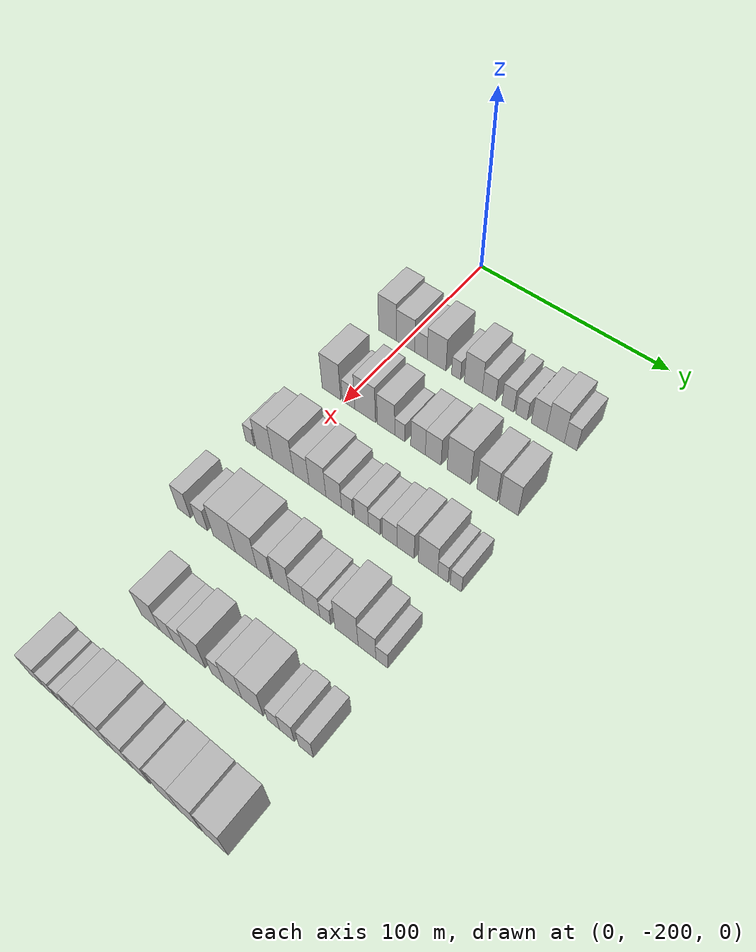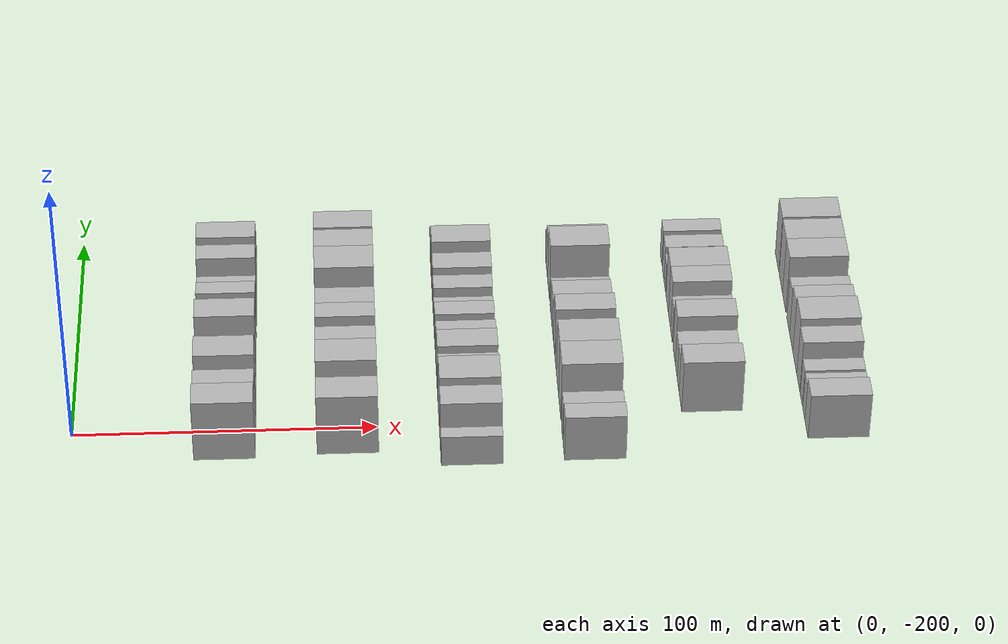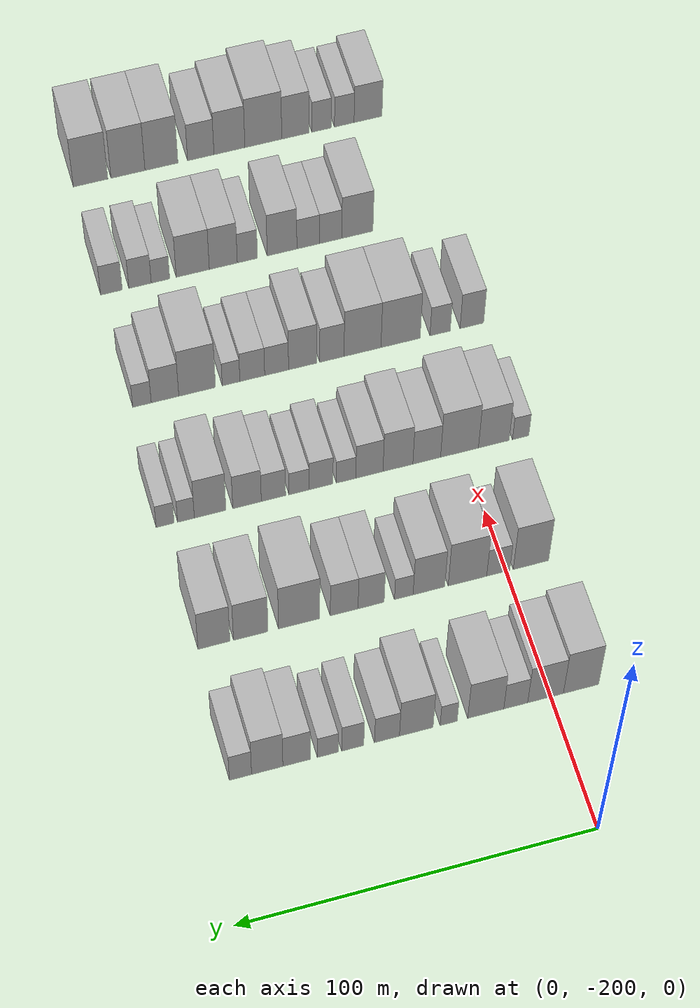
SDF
<sdf version="1.6">
 <world name="default">
  <model name="building_47">
   <static>1</static>
   <pose>50.0000 -208.5934 0 0.000000 0.000000 0.000000</pose>
   <link name="link">
    <pose>0 0 12.00 0 0 0</pose>
    <collision name="collision"><geometry><box><size>20.0000 10.1195 24.0000</size></box></geometry></collision>
    <visual name="visual">
     <cast_shadows>0</cast_shadows>
     <geometry><box><size>20.0000 10.1195 24.0000</size></box></geometry>
     <material>
      <script>
       <uri>model://HANNAS_wall/materials/scripts</uri>
       <uri>model://HANNAS_wall/materials/textures</uri>
       <name>vrc/HANNAS_wall</name>
      </script>
     </material>
    </visual>
   </link>
  </model>
  <model name="building_48">
   <static>1</static>
   <pose>50.0000 -198.4298 0 0.000000 0.000000 0.000000</pose>
   <link name="link">
    <pose>0 0 10.50 0 0 0</pose>
    <collision name="collision"><geometry><box><size>20.0000 10.2078 21.0000</size></box></geometry></collision>
    <visual name="visual">
     <cast_shadows>0</cast_shadows>
     <geometry><box><size>20.0000 10.2078 21.0000</size></box></geometry>
     <material>
      <script>
       <uri>model://HANNAS_wall/materials/scripts</uri>
       <uri>model://HANNAS_wall/materials/textures</uri>
       <name>vrc/HANNAS_wall</name>
      </script>
     </material>
    </visual>
   </link>
  </model>
  <model name="building_49">
   <static>1</static>
   <pose>50.0000 -189.9141 0 0.000000 0.000000 0.000000</pose>
   <link name="link">
    <pose>0 0 7.50 0 0 0</pose>
    <collision name="collision"><geometry><box><size>20.0000 6.8235 15.0000</size></box></geometry></collision>
    <visual name="visual">
     <cast_shadows>0</cast_shadows>
     <geometry><box><size>20.0000 6.8235 15.0000</size></box></geometry>
     <material>
      <script>
       <uri>model://HANNAS_wall/materials/scripts</uri>
       <uri>model://HANNAS_wall/materials/textures</uri>
       <name>vrc/HANNAS_wall</name>
      </script>
     </material>
    </visual>
   </link>
  </model>
  <model name="building_50">
   <static>1</static>
   <pose>50.0000 -181.3824 0 0.000000 0.000000 0.000000</pose>
   <link name="link">
    <pose>0 0 10.50 0 0 0</pose>
    <collision name="collision"><geometry><box><size>20.0000 10.2401 21.0000</size></box></geometry></collision>
    <visual name="visual">
     <cast_shadows>0</cast_shadows>
     <geometry><box><size>20.0000 10.2401 21.0000</size></box></geometry>
     <material>
      <script>
       <uri>model://HANNAS_wall/materials/scripts</uri>
       <uri>model://HANNAS_wall/materials/textures</uri>
       <name>vrc/HANNAS_wall</name>
      </script>
     </material>
    </visual>
   </link>
  </model>
  <model name="building_51">
   <static>1</static>
   <pose>50.0000 -170.8531 0 0.000000 0.000000 0.000000</pose>
   <link name="link">
    <pose>0 0 6.00 0 0 0</pose>
    <collision name="collision"><geometry><box><size>20.0000 4.8184 12.0000</size></box></geometry></collision>
    <visual name="visual">
     <cast_shadows>0</cast_shadows>
     <geometry><box><size>20.0000 4.8184 12.0000</size></box></geometry>
     <material>
      <script>
       <uri>model://HANNAS_wall/materials/scripts</uri>
       <uri>model://HANNAS_wall/materials/textures</uri>
       <name>vrc/HANNAS_wall</name>
      </script>
     </material>
    </visual>
   </link>
  </model>
  <model name="building_52">
   <static>1</static>
   <pose>50.0000 -161.6943 0 0.000000 0.000000 0.000000</pose>
   <link name="link">
    <pose>0 0 10.50 0 0 0</pose>
    <collision name="collision"><geometry><box><size>20.0000 9.4994 21.0000</size></box></geometry></collision>
    <visual name="visual">
     <cast_shadows>0</cast_shadows>
     <geometry><box><size>20.0000 9.4994 21.0000</size></box></geometry>
     <material>
      <script>
       <uri>model://HANNAS_wall/materials/scripts</uri>
       <uri>model://HANNAS_wall/materials/textures</uri>
       <name>vrc/HANNAS_wall</name>
      </script>
     </material>
    </visual>
   </link>
  </model>
  <model name="building_53">
   <static>1</static>
   <pose>50.0000 -153.4275 0 0.000000 0.000000 0.000000</pose>
   <link name="link">
    <pose>0 0 7.50 0 0 0</pose>
    <collision name="collision"><geometry><box><size>20.0000 7.0341 15.0000</size></box></geometry></collision>
    <visual name="visual">
     <cast_shadows>0</cast_shadows>
     <geometry><box><size>20.0000 7.0341 15.0000</size></box></geometry>
     <material>
      <script>
       <uri>model://HANNAS_wall/materials/scripts</uri>
       <uri>model://HANNAS_wall/materials/textures</uri>
       <name>vrc/HANNAS_wall</name>
      </script>
     </material>
    </visual>
   </link>
  </model>
  <model name="building_54">
   <static>1</static>
   <pose>50.0000 -143.8111 0 0.000000 0.000000 0.000000</pose>
   <link name="link">
    <pose>0 0 7.50 0 0 0</pose>
    <collision name="collision"><geometry><box><size>20.0000 6.1988 15.0000</size></box></geometry></collision>
    <visual name="visual">
     <cast_shadows>0</cast_shadows>
     <geometry><box><size>20.0000 6.1988 15.0000</size></box></geometry>
     <material>
      <script>
       <uri>model://HANNAS_wall/materials/scripts</uri>
       <uri>model://HANNAS_wall/materials/textures</uri>
       <name>vrc/HANNAS_wall</name>
      </script>
     </material>
    </visual>
   </link>
  </model>
  <model name="building_55">
   <static>1</static>
   <pose>50.0000 -136.8092 0 0.000000 0.000000 0.000000</pose>
   <link name="link">
    <pose>0 0 6.00 0 0 0</pose>
    <collision name="collision"><geometry><box><size>20.0000 5.8050 12.0000</size></box></geometry></collision>
    <visual name="visual">
     <cast_shadows>0</cast_shadows>
     <geometry><box><size>20.0000 5.8050 12.0000</size></box></geometry>
     <material>
      <script>
       <uri>model://HANNAS_wall/materials/scripts</uri>
       <uri>model://HANNAS_wall/materials/textures</uri>
       <name>vrc/HANNAS_wall</name>
      </script>
     </material>
    </visual>
   </link>
  </model>
  <model name="building_56">
   <static>1</static>
   <pose>50.0000 -128.0963 0 0.000000 0.000000 0.000000</pose>
   <link name="link">
    <pose>0 0 9.00 0 0 0</pose>
    <collision name="collision"><geometry><box><size>20.0000 7.6208 18.0000</size></box></geometry></collision>
    <visual name="visual">
     <cast_shadows>0</cast_shadows>
     <geometry><box><size>20.0000 7.6208 18.0000</size></box></geometry>
     <material>
      <script>
       <uri>model://HANNAS_wall/materials/scripts</uri>
       <uri>model://HANNAS_wall/materials/textures</uri>
       <name>vrc/HANNAS_wall</name>
      </script>
     </material>
    </visual>
   </link>
  </model>
  <model name="building_57">
   <static>1</static>
   <pose>50.0000 -119.9312 0 0.000000 0.000000 0.000000</pose>
   <link name="link">
    <pose>0 0 10.50 0 0 0</pose>
    <collision name="collision"><geometry><box><size>20.0000 8.7093 21.0000</size></box></geometry></collision>
    <visual name="visual">
     <cast_shadows>0</cast_shadows>
     <geometry><box><size>20.0000 8.7093 21.0000</size></box></geometry>
     <material>
      <script>
       <uri>model://HANNAS_wall/materials/scripts</uri>
       <uri>model://HANNAS_wall/materials/textures</uri>
       <name>vrc/HANNAS_wall</name>
      </script>
     </material>
    </visual>
   </link>
  </model>
  <model name="building_58">
   <static>1</static>
   <pose>50.0000 -112.5008 0 0.000000 0.000000 0.000000</pose>
   <link name="link">
    <pose>0 0 7.50 0 0 0</pose>
    <collision name="collision"><geometry><box><size>20.0000 6.1514 15.0000</size></box></geometry></collision>
    <visual name="visual">
     <cast_shadows>0</cast_shadows>
     <geometry><box><size>20.0000 6.1514 15.0000</size></box></geometry>
     <material>
      <script>
       <uri>model://HANNAS_wall/materials/scripts</uri>
       <uri>model://HANNAS_wall/materials/textures</uri>
       <name>vrc/HANNAS_wall</name>
      </script>
     </material>
    </visual>
   </link>
  </model>
  <model name="building_187">
   <static>1</static>
   <pose>90.0000 -207.2074 0 0.000000 0.000000 0.000000</pose>
   <link name="link">
    <pose>0 0 12.00 0 0 0</pose>
    <collision name="collision"><geometry><box><size>20.0000 10.3668 24.0000</size></box></geometry></collision>
    <visual name="visual">
     <cast_shadows>0</cast_shadows>
     <geometry><box><size>20.0000 10.3668 24.0000</size></box></geometry>
     <material>
      <script>
       <uri>model://HANNAS_wall/materials/scripts</uri>
       <uri>model://HANNAS_wall/materials/textures</uri>
       <name>vrc/HANNAS_wall</name>
      </script>
     </material>
    </visual>
   </link>
  </model>
  <model name="building_188">
   <static>1</static>
   <pose>90.0000 -197.6466 0 0.000000 0.000000 0.000000</pose>
   <link name="link">
    <pose>0 0 7.50 0 0 0</pose>
    <collision name="collision"><geometry><box><size>20.0000 6.7547 15.0000</size></box></geometry></collision>
    <visual name="visual">
     <cast_shadows>0</cast_shadows>
     <geometry><box><size>20.0000 6.7547 15.0000</size></box></geometry>
     <material>
      <script>
       <uri>model://HANNAS_wall/materials/scripts</uri>
       <uri>model://HANNAS_wall/materials/textures</uri>
       <name>vrc/HANNAS_wall</name>
      </script>
     </material>
    </visual>
   </link>
  </model>
  <model name="building_189">
   <static>1</static>
   <pose>90.0000 -188.6585 0 0.000000 0.000000 0.000000</pose>
   <link name="link">
    <pose>0 0 12.00 0 0 0</pose>
    <collision name="collision"><geometry><box><size>20.0000 11.2215 24.0000</size></box></geometry></collision>
    <visual name="visual">
     <cast_shadows>0</cast_shadows>
     <geometry><box><size>20.0000 11.2215 24.0000</size></box></geometry>
     <material>
      <script>
       <uri>model://HANNAS_wall/materials/scripts</uri>
       <uri>model://HANNAS_wall/materials/textures</uri>
       <name>vrc/HANNAS_wall</name>
      </script>
     </material>
    </visual>
   </link>
  </model>
  <model name="building_190">
   <static>1</static>
   <pose>90.0000 -177.4496 0 0.000000 0.000000 0.000000</pose>
   <link name="link">
    <pose>0 0 10.50 0 0 0</pose>
    <collision name="collision"><geometry><box><size>20.0000 9.1963 21.0000</size></box></geometry></collision>
    <visual name="visual">
     <cast_shadows>0</cast_shadows>
     <geometry><box><size>20.0000 9.1963 21.0000</size></box></geometry>
     <material>
      <script>
       <uri>model://HANNAS_wall/materials/scripts</uri>
       <uri>model://HANNAS_wall/materials/textures</uri>
       <name>vrc/HANNAS_wall</name>
      </script>
     </material>
    </visual>
   </link>
  </model>
  <model name="building_191">
   <static>1</static>
   <pose>90.0000 -170.1637 0 0.000000 0.000000 0.000000</pose>
   <link name="link">
    <pose>0 0 6.00 0 0 0</pose>
    <collision name="collision"><geometry><box><size>20.0000 5.3755 12.0000</size></box></geometry></collision>
    <visual name="visual">
     <cast_shadows>0</cast_shadows>
     <geometry><box><size>20.0000 5.3755 12.0000</size></box></geometry>
     <material>
      <script>
       <uri>model://HANNAS_wall/materials/scripts</uri>
       <uri>model://HANNAS_wall/materials/textures</uri>
       <name>vrc/HANNAS_wall</name>
      </script>
     </material>
    </visual>
   </link>
  </model>
  <model name="building_192">
   <static>1</static>
   <pose>90.0000 -160.7091 0 0.000000 0.000000 0.000000</pose>
   <link name="link">
    <pose>0 0 9.00 0 0 0</pose>
    <collision name="collision"><geometry><box><size>20.0000 7.5336 18.0000</size></box></geometry></collision>
    <visual name="visual">
     <cast_shadows>0</cast_shadows>
     <geometry><box><size>20.0000 7.5336 18.0000</size></box></geometry>
     <material>
      <script>
       <uri>model://HANNAS_wall/materials/scripts</uri>
       <uri>model://HANNAS_wall/materials/textures</uri>
       <name>vrc/HANNAS_wall</name>
      </script>
     </material>
    </visual>
   </link>
  </model>
  <model name="building_193">
   <static>1</static>
   <pose>90.0000 -152.9391 0 0.000000 0.000000 0.000000</pose>
   <link name="link">
    <pose>0 0 9.00 0 0 0</pose>
    <collision name="collision"><geometry><box><size>20.0000 8.0065 18.0000</size></box></geometry></collision>
    <visual name="visual">
     <cast_shadows>0</cast_shadows>
     <geometry><box><size>20.0000 8.0065 18.0000</size></box></geometry>
     <material>
      <script>
       <uri>model://HANNAS_wall/materials/scripts</uri>
       <uri>model://HANNAS_wall/materials/textures</uri>
       <name>vrc/HANNAS_wall</name>
      </script>
     </material>
    </visual>
   </link>
  </model>
  <model name="building_194">
   <static>1</static>
   <pose>90.0000 -140.0308 0 0.000000 0.000000 0.000000</pose>
   <link name="link">
    <pose>0 0 12.00 0 0 0</pose>
    <collision name="collision"><geometry><box><size>20.0000 11.8102 24.0000</size></box></geometry></collision>
    <visual name="visual">
     <cast_shadows>0</cast_shadows>
     <geometry><box><size>20.0000 11.8102 24.0000</size></box></geometry>
     <material>
      <script>
       <uri>model://HANNAS_wall/materials/scripts</uri>
       <uri>model://HANNAS_wall/materials/textures</uri>
       <name>vrc/HANNAS_wall</name>
      </script>
     </material>
    </visual>
   </link>
  </model>
  <model name="building_195">
   <static>1</static>
   <pose>90.0000 -126.2016 0 0.000000 0.000000 0.000000</pose>
   <link name="link">
    <pose>0 0 10.50 0 0 0</pose>
    <collision name="collision"><geometry><box><size>20.0000 9.8482 21.0000</size></box></geometry></collision>
    <visual name="visual">
     <cast_shadows>0</cast_shadows>
     <geometry><box><size>20.0000 9.8482 21.0000</size></box></geometry>
     <material>
      <script>
       <uri>model://HANNAS_wall/materials/scripts</uri>
       <uri>model://HANNAS_wall/materials/textures</uri>
       <name>vrc/HANNAS_wall</name>
      </script>
     </material>
    </visual>
   </link>
  </model>
  <model name="building_196">
   <static>1</static>
   <pose>90.0000 -115.7255 0 0.000000 0.000000 0.000000</pose>
   <link name="link">
    <pose>0 0 10.50 0 0 0</pose>
    <collision name="collision"><geometry><box><size>20.0000 9.1041 21.0000</size></box></geometry></collision>
    <visual name="visual">
     <cast_shadows>0</cast_shadows>
     <geometry><box><size>20.0000 9.1041 21.0000</size></box></geometry>
     <material>
      <script>
       <uri>model://HANNAS_wall/materials/scripts</uri>
       <uri>model://HANNAS_wall/materials/textures</uri>
       <name>vrc/HANNAS_wall</name>
      </script>
     </material>
    </visual>
   </link>
  </model>
  <model name="building_326">
   <static>1</static>
   <pose>130.0000 -217.0787 0 0.000000 0.000000 0.000000</pose>
   <link name="link">
    <pose>0 0 6.00 0 0 0</pose>
    <collision name="collision"><geometry><box><size>20.0000 4.9067 12.0000</size></box></geometry></collision>
    <visual name="visual">
     <cast_shadows>0</cast_shadows>
     <geometry><box><size>20.0000 4.9067 12.0000</size></box></geometry>
     <material>
      <script>
       <uri>model://HANNAS_wall/materials/scripts</uri>
       <uri>model://HANNAS_wall/materials/textures</uri>
       <name>vrc/HANNAS_wall</name>
      </script>
     </material>
    </visual>
   </link>
  </model>
  <model name="building_327">
   <static>1</static>
   <pose>130.0000 -209.0170 0 0.000000 0.000000 0.000000</pose>
   <link name="link">
    <pose>0 0 10.50 0 0 0</pose>
    <collision name="collision"><geometry><box><size>20.0000 9.2166 21.0000</size></box></geometry></collision>
    <visual name="visual">
     <cast_shadows>0</cast_shadows>
     <geometry><box><size>20.0000 9.2166 21.0000</size></box></geometry>
     <material>
      <script>
       <uri>model://HANNAS_wall/materials/scripts</uri>
       <uri>model://HANNAS_wall/materials/textures</uri>
       <name>vrc/HANNAS_wall</name>
      </script>
     </material>
    </visual>
   </link>
  </model>
  <model name="building_328">
   <static>1</static>
   <pose>130.0000 -198.7559 0 0.000000 0.000000 0.000000</pose>
   <link name="link">
    <pose>0 0 12.00 0 0 0</pose>
    <collision name="collision"><geometry><box><size>20.0000 11.3056 24.0000</size></box></geometry></collision>
    <visual name="visual">
     <cast_shadows>0</cast_shadows>
     <geometry><box><size>20.0000 11.3056 24.0000</size></box></geometry>
     <material>
      <script>
       <uri>model://HANNAS_wall/materials/scripts</uri>
       <uri>model://HANNAS_wall/materials/textures</uri>
       <name>vrc/HANNAS_wall</name>
      </script>
     </material>
    </visual>
   </link>
  </model>
  <model name="building_329">
   <static>1</static>
   <pose>130.0000 -188.9693 0 0.000000 0.000000 0.000000</pose>
   <link name="link">
    <pose>0 0 9.00 0 0 0</pose>
    <collision name="collision"><geometry><box><size>20.0000 8.2676 18.0000</size></box></geometry></collision>
    <visual name="visual">
     <cast_shadows>0</cast_shadows>
     <geometry><box><size>20.0000 8.2676 18.0000</size></box></geometry>
     <material>
      <script>
       <uri>model://HANNAS_wall/materials/scripts</uri>
       <uri>model://HANNAS_wall/materials/textures</uri>
       <name>vrc/HANNAS_wall</name>
      </script>
     </material>
    </visual>
   </link>
  </model>
  <model name="building_330">
   <static>1</static>
   <pose>130.0000 -180.4011 0 0.000000 0.000000 0.000000</pose>
   <link name="link">
    <pose>0 0 10.50 0 0 0</pose>
    <collision name="collision"><geometry><box><size>20.0000 8.8687 21.0000</size></box></geometry></collision>
    <visual name="visual">
     <cast_shadows>0</cast_shadows>
     <geometry><box><size>20.0000 8.8687 21.0000</size></box></geometry>
     <material>
      <script>
       <uri>model://HANNAS_wall/materials/scripts</uri>
       <uri>model://HANNAS_wall/materials/textures</uri>
       <name>vrc/HANNAS_wall</name>
      </script>
     </material>
    </visual>
   </link>
  </model>
  <model name="building_331">
   <static>1</static>
   <pose>130.0000 -171.9346 0 0.000000 0.000000 0.000000</pose>
   <link name="link">
    <pose>0 0 9.00 0 0 0</pose>
    <collision name="collision"><geometry><box><size>20.0000 8.0644 18.0000</size></box></geometry></collision>
    <visual name="visual">
     <cast_shadows>0</cast_shadows>
     <geometry><box><size>20.0000 8.0644 18.0000</size></box></geometry>
     <material>
      <script>
       <uri>model://HANNAS_wall/materials/scripts</uri>
       <uri>model://HANNAS_wall/materials/textures</uri>
       <name>vrc/HANNAS_wall</name>
      </script>
     </material>
    </visual>
   </link>
  </model>
  <model name="building_332">
   <static>1</static>
   <pose>130.0000 -165.0359 0 0.000000 0.000000 0.000000</pose>
   <link name="link">
    <pose>0 0 6.00 0 0 0</pose>
    <collision name="collision"><geometry><box><size>20.0000 5.7330 12.0000</size></box></geometry></collision>
    <visual name="visual">
     <cast_shadows>0</cast_shadows>
     <geometry><box><size>20.0000 5.7330 12.0000</size></box></geometry>
     <material>
      <script>
       <uri>model://HANNAS_wall/materials/scripts</uri>
       <uri>model://HANNAS_wall/materials/textures</uri>
       <name>vrc/HANNAS_wall</name>
      </script>
     </material>
    </visual>
   </link>
  </model>
  <model name="building_333">
   <static>1</static>
   <pose>130.0000 -157.6831 0 0.000000 0.000000 0.000000</pose>
   <link name="link">
    <pose>0 0 7.50 0 0 0</pose>
    <collision name="collision"><geometry><box><size>20.0000 6.9726 15.0000</size></box></geometry></collision>
    <visual name="visual">
     <cast_shadows>0</cast_shadows>
     <geometry><box><size>20.0000 6.9726 15.0000</size></box></geometry>
     <material>
      <script>
       <uri>model://HANNAS_wall/materials/scripts</uri>
       <uri>model://HANNAS_wall/materials/textures</uri>
       <name>vrc/HANNAS_wall</name>
      </script>
     </material>
    </visual>
   </link>
  </model>
  <model name="building_334">
   <static>1</static>
   <pose>130.0000 -151.2222 0 0.000000 0.000000 0.000000</pose>
   <link name="link">
    <pose>0 0 6.00 0 0 0</pose>
    <collision name="collision"><geometry><box><size>20.0000 5.9492 12.0000</size></box></geometry></collision>
    <visual name="visual">
     <cast_shadows>0</cast_shadows>
     <geometry><box><size>20.0000 5.9492 12.0000</size></box></geometry>
     <material>
      <script>
       <uri>model://HANNAS_wall/materials/scripts</uri>
       <uri>model://HANNAS_wall/materials/textures</uri>
       <name>vrc/HANNAS_wall</name>
      </script>
     </material>
    </visual>
   </link>
  </model>
  <model name="building_335">
   <static>1</static>
   <pose>130.0000 -143.6815 0 0.000000 0.000000 0.000000</pose>
   <link name="link">
    <pose>0 0 7.50 0 0 0</pose>
    <collision name="collision"><geometry><box><size>20.0000 7.1323 15.0000</size></box></geometry></collision>
    <visual name="visual">
     <cast_shadows>0</cast_shadows>
     <geometry><box><size>20.0000 7.1323 15.0000</size></box></geometry>
     <material>
      <script>
       <uri>model://HANNAS_wall/materials/scripts</uri>
       <uri>model://HANNAS_wall/materials/textures</uri>
       <name>vrc/HANNAS_wall</name>
      </script>
     </material>
    </visual>
   </link>
  </model>
  <model name="building_336">
   <static>1</static>
   <pose>130.0000 -135.9465 0 0.000000 0.000000 0.000000</pose>
   <link name="link">
    <pose>0 0 9.00 0 0 0</pose>
    <collision name="collision"><geometry><box><size>20.0000 8.3377 18.0000</size></box></geometry></collision>
    <visual name="visual">
     <cast_shadows>0</cast_shadows>
     <geometry><box><size>20.0000 8.3377 18.0000</size></box></geometry>
     <material>
      <script>
       <uri>model://HANNAS_wall/materials/scripts</uri>
       <uri>model://HANNAS_wall/materials/textures</uri>
       <name>vrc/HANNAS_wall</name>
      </script>
     </material>
    </visual>
   </link>
  </model>
  <model name="building_337">
   <static>1</static>
   <pose>130.0000 -125.1754 0 0.000000 0.000000 0.000000</pose>
   <link name="link">
    <pose>0 0 10.50 0 0 0</pose>
    <collision name="collision"><geometry><box><size>20.0000 9.2045 21.0000</size></box></geometry></collision>
    <visual name="visual">
     <cast_shadows>0</cast_shadows>
     <geometry><box><size>20.0000 9.2045 21.0000</size></box></geometry>
     <material>
      <script>
       <uri>model://HANNAS_wall/materials/scripts</uri>
       <uri>model://HANNAS_wall/materials/textures</uri>
       <name>vrc/HANNAS_wall</name>
      </script>
     </material>
    </visual>
   </link>
  </model>
  <model name="building_338">
   <static>1</static>
   <pose>130.0000 -118.1358 0 0.000000 0.000000 0.000000</pose>
   <link name="link">
    <pose>0 0 6.00 0 0 0</pose>
    <collision name="collision"><geometry><box><size>20.0000 4.8747 12.0000</size></box></geometry></collision>
    <visual name="visual">
     <cast_shadows>0</cast_shadows>
     <geometry><box><size>20.0000 4.8747 12.0000</size></box></geometry>
     <material>
      <script>
       <uri>model://HANNAS_wall/materials/scripts</uri>
       <uri>model://HANNAS_wall/materials/textures</uri>
       <name>vrc/HANNAS_wall</name>
      </script>
     </material>
    </visual>
   </link>
  </model>
  <model name="building_339">
   <static>1</static>
   <pose>130.0000 -112.0849 0 0.000000 0.000000 0.000000</pose>
   <link name="link">
    <pose>0 0 6.00 0 0 0</pose>
    <collision name="collision"><geometry><box><size>20.0000 5.2271 12.0000</size></box></geometry></collision>
    <visual name="visual">
     <cast_shadows>0</cast_shadows>
     <geometry><box><size>20.0000 5.2271 12.0000</size></box></geometry>
     <material>
      <script>
       <uri>model://HANNAS_wall/materials/scripts</uri>
       <uri>model://HANNAS_wall/materials/textures</uri>
       <name>vrc/HANNAS_wall</name>
      </script>
     </material>
    </visual>
   </link>
  </model>
  <model name="building_452">
   <static>1</static>
   <pose>170.0000 -214.9379 0 0.000000 0.000000 0.000000</pose>
   <link name="link">
    <pose>0 0 9.00 0 0 0</pose>
    <collision name="collision"><geometry><box><size>20.0000 7.2183 18.0000</size></box></geometry></collision>
    <visual name="visual">
     <cast_shadows>0</cast_shadows>
     <geometry><box><size>20.0000 7.2183 18.0000</size></box></geometry>
     <material>
      <script>
       <uri>model://HANNAS_wall/materials/scripts</uri>
       <uri>model://HANNAS_wall/materials/textures</uri>
       <name>vrc/HANNAS_wall</name>
      </script>
     </material>
    </visual>
   </link>
  </model>
  <model name="building_453">
   <static>1</static>
   <pose>170.0000 -205.2210 0 0.000000 0.000000 0.000000</pose>
   <link name="link">
    <pose>0 0 7.50 0 0 0</pose>
    <collision name="collision"><geometry><box><size>20.0000 6.2155 15.0000</size></box></geometry></collision>
    <visual name="visual">
     <cast_shadows>0</cast_shadows>
     <geometry><box><size>20.0000 6.2155 15.0000</size></box></geometry>
     <material>
      <script>
       <uri>model://HANNAS_wall/materials/scripts</uri>
       <uri>model://HANNAS_wall/materials/textures</uri>
       <name>vrc/HANNAS_wall</name>
      </script>
     </material>
    </visual>
   </link>
  </model>
  <model name="building_454">
   <static>1</static>
   <pose>170.0000 -193.1445 0 0.000000 0.000000 0.000000</pose>
   <link name="link">
    <pose>0 0 12.00 0 0 0</pose>
    <collision name="collision"><geometry><box><size>20.0000 11.9375 24.0000</size></box></geometry></collision>
    <visual name="visual">
     <cast_shadows>0</cast_shadows>
     <geometry><box><size>20.0000 11.9375 24.0000</size></box></geometry>
     <material>
      <script>
       <uri>model://HANNAS_wall/materials/scripts</uri>
       <uri>model://HANNAS_wall/materials/textures</uri>
       <name>vrc/HANNAS_wall</name>
      </script>
     </material>
    </visual>
   </link>
  </model>
  <model name="building_455">
   <static>1</static>
   <pose>170.0000 -181.5685 0 0.000000 0.000000 0.000000</pose>
   <link name="link">
    <pose>0 0 12.00 0 0 0</pose>
    <collision name="collision"><geometry><box><size>20.0000 11.2147 24.0000</size></box></geometry></collision>
    <visual name="visual">
     <cast_shadows>0</cast_shadows>
     <geometry><box><size>20.0000 11.2147 24.0000</size></box></geometry>
     <material>
      <script>
       <uri>model://HANNAS_wall/materials/scripts</uri>
       <uri>model://HANNAS_wall/materials/textures</uri>
       <name>vrc/HANNAS_wall</name>
      </script>
     </material>
    </visual>
   </link>
  </model>
  <model name="building_456">
   <static>1</static>
   <pose>170.0000 -172.3012 0 0.000000 0.000000 0.000000</pose>
   <link name="link">
    <pose>0 0 9.00 0 0 0</pose>
    <collision name="collision"><geometry><box><size>20.0000 7.3198 18.0000</size></box></geometry></collision>
    <visual name="visual">
     <cast_shadows>0</cast_shadows>
     <geometry><box><size>20.0000 7.3198 18.0000</size></box></geometry>
     <material>
      <script>
       <uri>model://HANNAS_wall/materials/scripts</uri>
       <uri>model://HANNAS_wall/materials/textures</uri>
       <name>vrc/HANNAS_wall</name>
      </script>
     </material>
    </visual>
   </link>
  </model>
  <model name="building_457">
   <static>1</static>
   <pose>170.0000 -163.4332 0 0.000000 0.000000 0.000000</pose>
   <link name="link">
    <pose>0 0 10.50 0 0 0</pose>
    <collision name="collision"><geometry><box><size>20.0000 8.4163 21.0000</size></box></geometry></collision>
    <visual name="visual">
     <cast_shadows>0</cast_shadows>
     <geometry><box><size>20.0000 8.4163 21.0000</size></box></geometry>
     <material>
      <script>
       <uri>model://HANNAS_wall/materials/scripts</uri>
       <uri>model://HANNAS_wall/materials/textures</uri>
       <name>vrc/HANNAS_wall</name>
      </script>
     </material>
    </visual>
   </link>
  </model>
  <model name="building_458">
   <static>1</static>
   <pose>170.0000 -155.6379 0 0.000000 0.000000 0.000000</pose>
   <link name="link">
    <pose>0 0 7.50 0 0 0</pose>
    <collision name="collision"><geometry><box><size>20.0000 7.1742 15.0000</size></box></geometry></collision>
    <visual name="visual">
     <cast_shadows>0</cast_shadows>
     <geometry><box><size>20.0000 7.1742 15.0000</size></box></geometry>
     <material>
      <script>
       <uri>model://HANNAS_wall/materials/scripts</uri>
       <uri>model://HANNAS_wall/materials/textures</uri>
       <name>vrc/HANNAS_wall</name>
      </script>
     </material>
    </visual>
   </link>
  </model>
  <model name="building_459">
   <static>1</static>
   <pose>170.0000 -148.3262 0 0.000000 0.000000 0.000000</pose>
   <link name="link">
    <pose>0 0 7.50 0 0 0</pose>
    <collision name="collision"><geometry><box><size>20.0000 7.4492 15.0000</size></box></geometry></collision>
    <visual name="visual">
     <cast_shadows>0</cast_shadows>
     <geometry><box><size>20.0000 7.4492 15.0000</size></box></geometry>
     <material>
      <script>
       <uri>model://HANNAS_wall/materials/scripts</uri>
       <uri>model://HANNAS_wall/materials/textures</uri>
       <name>vrc/HANNAS_wall</name>
      </script>
     </material>
    </visual>
   </link>
  </model>
  <model name="building_460">
   <static>1</static>
   <pose>170.0000 -141.9584 0 0.000000 0.000000 0.000000</pose>
   <link name="link">
    <pose>0 0 6.00 0 0 0</pose>
    <collision name="collision"><geometry><box><size>20.0000 5.2864 12.0000</size></box></geometry></collision>
    <visual name="visual">
     <cast_shadows>0</cast_shadows>
     <geometry><box><size>20.0000 5.2864 12.0000</size></box></geometry>
     <material>
      <script>
       <uri>model://HANNAS_wall/materials/scripts</uri>
       <uri>model://HANNAS_wall/materials/textures</uri>
       <name>vrc/HANNAS_wall</name>
      </script>
     </material>
    </visual>
   </link>
  </model>
  <model name="building_461">
   <static>1</static>
   <pose>170.0000 -131.8360 0 0.000000 0.000000 0.000000</pose>
   <link name="link">
    <pose>0 0 12.00 0 0 0</pose>
    <collision name="collision"><geometry><box><size>20.0000 10.9584 24.0000</size></box></geometry></collision>
    <visual name="visual">
     <cast_shadows>0</cast_shadows>
     <geometry><box><size>20.0000 10.9584 24.0000</size></box></geometry>
     <material>
      <script>
       <uri>model://HANNAS_wall/materials/scripts</uri>
       <uri>model://HANNAS_wall/materials/textures</uri>
       <name>vrc/HANNAS_wall</name>
      </script>
     </material>
    </visual>
   </link>
  </model>
  <model name="building_462">
   <static>1</static>
   <pose>170.0000 -122.2541 0 0.000000 0.000000 0.000000</pose>
   <link name="link">
    <pose>0 0 9.00 0 0 0</pose>
    <collision name="collision"><geometry><box><size>20.0000 8.2053 18.0000</size></box></geometry></collision>
    <visual name="visual">
     <cast_shadows>0</cast_shadows>
     <geometry><box><size>20.0000 8.2053 18.0000</size></box></geometry>
     <material>
      <script>
       <uri>model://HANNAS_wall/materials/scripts</uri>
       <uri>model://HANNAS_wall/materials/textures</uri>
       <name>vrc/HANNAS_wall</name>
      </script>
     </material>
    </visual>
   </link>
  </model>
  <model name="building_463">
   <static>1</static>
   <pose>170.0000 -115.4026 0 0.000000 0.000000 0.000000</pose>
   <link name="link">
    <pose>0 0 6.00 0 0 0</pose>
    <collision name="collision"><geometry><box><size>20.0000 5.4978 12.0000</size></box></geometry></collision>
    <visual name="visual">
     <cast_shadows>0</cast_shadows>
     <geometry><box><size>20.0000 5.4978 12.0000</size></box></geometry>
     <material>
      <script>
       <uri>model://HANNAS_wall/materials/scripts</uri>
       <uri>model://HANNAS_wall/materials/textures</uri>
       <name>vrc/HANNAS_wall</name>
      </script>
     </material>
    </visual>
   </link>
  </model>
  <model name="building_591">
   <static>1</static>
   <pose>210.0000 -191.6477 0 0.000000 0.000000 0.000000</pose>
   <link name="link">
    <pose>0 0 10.50 0 0 0</pose>
    <collision name="collision"><geometry><box><size>20.0000 9.6766 21.0000</size></box></geometry></collision>
    <visual name="visual">
     <cast_shadows>0</cast_shadows>
     <geometry><box><size>20.0000 9.6766 21.0000</size></box></geometry>
     <material>
      <script>
       <uri>model://HANNAS_wall/materials/scripts</uri>
       <uri>model://HANNAS_wall/materials/textures</uri>
       <name>vrc/HANNAS_wall</name>
      </script>
     </material>
    </visual>
   </link>
  </model>
  <model name="building_592">
   <static>1</static>
   <pose>210.0000 -183.3773 0 0.000000 0.000000 0.000000</pose>
   <link name="link">
    <pose>0 0 7.50 0 0 0</pose>
    <collision name="collision"><geometry><box><size>20.0000 6.8642 15.0000</size></box></geometry></collision>
    <visual name="visual">
     <cast_shadows>0</cast_shadows>
     <geometry><box><size>20.0000 6.8642 15.0000</size></box></geometry>
     <material>
      <script>
       <uri>model://HANNAS_wall/materials/scripts</uri>
       <uri>model://HANNAS_wall/materials/textures</uri>
       <name>vrc/HANNAS_wall</name>
      </script>
     </material>
    </visual>
   </link>
  </model>
  <model name="building_593">
   <static>1</static>
   <pose>210.0000 -176.4308 0 0.000000 0.000000 0.000000</pose>
   <link name="link">
    <pose>0 0 7.50 0 0 0</pose>
    <collision name="collision"><geometry><box><size>20.0000 7.0288 15.0000</size></box></geometry></collision>
    <visual name="visual">
     <cast_shadows>0</cast_shadows>
     <geometry><box><size>20.0000 7.0288 15.0000</size></box></geometry>
     <material>
      <script>
       <uri>model://HANNAS_wall/materials/scripts</uri>
       <uri>model://HANNAS_wall/materials/textures</uri>
       <name>vrc/HANNAS_wall</name>
      </script>
     </material>
    </visual>
   </link>
  </model>
  <model name="building_594">
   <static>1</static>
   <pose>210.0000 -168.3351 0 0.000000 0.000000 0.000000</pose>
   <link name="link">
    <pose>0 0 10.50 0 0 0</pose>
    <collision name="collision"><geometry><box><size>20.0000 9.1627 21.0000</size></box></geometry></collision>
    <visual name="visual">
     <cast_shadows>0</cast_shadows>
     <geometry><box><size>20.0000 9.1627 21.0000</size></box></geometry>
     <material>
      <script>
       <uri>model://HANNAS_wall/materials/scripts</uri>
       <uri>model://HANNAS_wall/materials/textures</uri>
       <name>vrc/HANNAS_wall</name>
      </script>
     </material>
    </visual>
   </link>
  </model>
  <model name="building_595">
   <static>1</static>
   <pose>210.0000 -157.6615 0 0.000000 0.000000 0.000000</pose>
   <link name="link">
    <pose>0 0 7.50 0 0 0</pose>
    <collision name="collision"><geometry><box><size>20.0000 6.1844 15.0000</size></box></geometry></collision>
    <visual name="visual">
     <cast_shadows>0</cast_shadows>
     <geometry><box><size>20.0000 6.1844 15.0000</size></box></geometry>
     <material>
      <script>
       <uri>model://HANNAS_wall/materials/scripts</uri>
       <uri>model://HANNAS_wall/materials/textures</uri>
       <name>vrc/HANNAS_wall</name>
      </script>
     </material>
    </visual>
   </link>
  </model>
  <model name="building_596">
   <static>1</static>
   <pose>210.0000 -150.2790 0 0.000000 0.000000 0.000000</pose>
   <link name="link">
    <pose>0 0 10.50 0 0 0</pose>
    <collision name="collision"><geometry><box><size>20.0000 8.5805 21.0000</size></box></geometry></collision>
    <visual name="visual">
     <cast_shadows>0</cast_shadows>
     <geometry><box><size>20.0000 8.5805 21.0000</size></box></geometry>
     <material>
      <script>
       <uri>model://HANNAS_wall/materials/scripts</uri>
       <uri>model://HANNAS_wall/materials/textures</uri>
       <name>vrc/HANNAS_wall</name>
      </script>
     </material>
    </visual>
   </link>
  </model>
  <model name="building_597">
   <static>1</static>
   <pose>210.0000 -140.9260 0 0.000000 0.000000 0.000000</pose>
   <link name="link">
    <pose>0 0 10.50 0 0 0</pose>
    <collision name="collision"><geometry><box><size>20.0000 10.1255 21.0000</size></box></geometry></collision>
    <visual name="visual">
     <cast_shadows>0</cast_shadows>
     <geometry><box><size>20.0000 10.1255 21.0000</size></box></geometry>
     <material>
      <script>
       <uri>model://HANNAS_wall/materials/scripts</uri>
       <uri>model://HANNAS_wall/materials/textures</uri>
       <name>vrc/HANNAS_wall</name>
      </script>
     </material>
    </visual>
   </link>
  </model>
  <model name="building_598">
   <static>1</static>
   <pose>210.0000 -131.0535 0 0.000000 0.000000 0.000000</pose>
   <link name="link">
    <pose>0 0 6.00 0 0 0</pose>
    <collision name="collision"><geometry><box><size>20.0000 5.6195 12.0000</size></box></geometry></collision>
    <visual name="visual">
     <cast_shadows>0</cast_shadows>
     <geometry><box><size>20.0000 5.6195 12.0000</size></box></geometry>
     <material>
      <script>
       <uri>model://HANNAS_wall/materials/scripts</uri>
       <uri>model://HANNAS_wall/materials/textures</uri>
       <name>vrc/HANNAS_wall</name>
      </script>
     </material>
    </visual>
   </link>
  </model>
  <model name="building_599">
   <static>1</static>
   <pose>210.0000 -124.8397 0 0.000000 0.000000 0.000000</pose>
   <link name="link">
    <pose>0 0 7.50 0 0 0</pose>
    <collision name="collision"><geometry><box><size>20.0000 6.8082 15.0000</size></box></geometry></collision>
    <visual name="visual">
     <cast_shadows>0</cast_shadows>
     <geometry><box><size>20.0000 6.8082 15.0000</size></box></geometry>
     <material>
      <script>
       <uri>model://HANNAS_wall/materials/scripts</uri>
       <uri>model://HANNAS_wall/materials/textures</uri>
       <name>vrc/HANNAS_wall</name>
      </script>
     </material>
    </visual>
   </link>
  </model>
  <model name="building_600">
   <static>1</static>
   <pose>210.0000 -116.1530 0 0.000000 0.000000 0.000000</pose>
   <link name="link">
    <pose>0 0 7.50 0 0 0</pose>
    <collision name="collision"><geometry><box><size>20.0000 6.5652 15.0000</size></box></geometry></collision>
    <visual name="visual">
     <cast_shadows>0</cast_shadows>
     <geometry><box><size>20.0000 6.5652 15.0000</size></box></geometry>
     <material>
      <script>
       <uri>model://HANNAS_wall/materials/scripts</uri>
       <uri>model://HANNAS_wall/materials/textures</uri>
       <name>vrc/HANNAS_wall</name>
      </script>
     </material>
    </visual>
   </link>
  </model>
  <model name="building_731">
   <static>1</static>
   <pose>250.0000 -206.6841 0 0.000000 0.000000 0.000000</pose>
   <link name="link">
    <pose>0 0 9.00 0 0 0</pose>
    <collision name="collision"><geometry><box><size>20.0000 8.8905 18.0000</size></box></geometry></collision>
    <visual name="visual">
     <cast_shadows>0</cast_shadows>
     <geometry><box><size>20.0000 8.8905 18.0000</size></box></geometry>
     <material>
      <script>
       <uri>model://HANNAS_wall/materials/scripts</uri>
       <uri>model://HANNAS_wall/materials/textures</uri>
       <name>vrc/HANNAS_wall</name>
      </script>
     </material>
    </visual>
   </link>
  </model>
  <model name="building_732">
   <static>1</static>
   <pose>250.0000 -199.1277 0 0.000000 0.000000 0.000000</pose>
   <link name="link">
    <pose>0 0 7.50 0 0 0</pose>
    <collision name="collision"><geometry><box><size>20.0000 6.2223 15.0000</size></box></geometry></collision>
    <visual name="visual">
     <cast_shadows>0</cast_shadows>
     <geometry><box><size>20.0000 6.2223 15.0000</size></box></geometry>
     <material>
      <script>
       <uri>model://HANNAS_wall/materials/scripts</uri>
       <uri>model://HANNAS_wall/materials/textures</uri>
       <name>vrc/HANNAS_wall</name>
      </script>
     </material>
    </visual>
   </link>
  </model>
  <model name="building_733">
   <static>1</static>
   <pose>250.0000 -191.9438 0 0.000000 0.000000 0.000000</pose>
   <link name="link">
    <pose>0 0 7.50 0 0 0</pose>
    <collision name="collision"><geometry><box><size>20.0000 6.1454 15.0000</size></box></geometry></collision>
    <visual name="visual">
     <cast_shadows>0</cast_shadows>
     <geometry><box><size>20.0000 6.1454 15.0000</size></box></geometry>
     <material>
      <script>
       <uri>model://HANNAS_wall/materials/scripts</uri>
       <uri>model://HANNAS_wall/materials/textures</uri>
       <name>vrc/HANNAS_wall</name>
      </script>
     </material>
    </visual>
   </link>
  </model>
  <model name="building_734">
   <static>1</static>
   <pose>250.0000 -183.5854 0 0.000000 0.000000 0.000000</pose>
   <link name="link">
    <pose>0 0 10.50 0 0 0</pose>
    <collision name="collision"><geometry><box><size>20.0000 8.5714 21.0000</size></box></geometry></collision>
    <visual name="visual">
     <cast_shadows>0</cast_shadows>
     <geometry><box><size>20.0000 8.5714 21.0000</size></box></geometry>
     <material>
      <script>
       <uri>model://HANNAS_wall/materials/scripts</uri>
       <uri>model://HANNAS_wall/materials/textures</uri>
       <name>vrc/HANNAS_wall</name>
      </script>
     </material>
    </visual>
   </link>
  </model>
  <model name="building_735">
   <static>1</static>
   <pose>250.0000 -173.4971 0 0.000000 0.000000 0.000000</pose>
   <link name="link">
    <pose>0 0 12.00 0 0 0</pose>
    <collision name="collision"><geometry><box><size>20.0000 11.6051 24.0000</size></box></geometry></collision>
    <visual name="visual">
     <cast_shadows>0</cast_shadows>
     <geometry><box><size>20.0000 11.6051 24.0000</size></box></geometry>
     <material>
      <script>
       <uri>model://HANNAS_wall/materials/scripts</uri>
       <uri>model://HANNAS_wall/materials/textures</uri>
       <name>vrc/HANNAS_wall</name>
      </script>
     </material>
    </visual>
   </link>
  </model>
  <model name="building_736">
   <static>1</static>
   <pose>250.0000 -162.8351 0 0.000000 0.000000 0.000000</pose>
   <link name="link">
    <pose>0 0 10.50 0 0 0</pose>
    <collision name="collision"><geometry><box><size>20.0000 9.7190 21.0000</size></box></geometry></collision>
    <visual name="visual">
     <cast_shadows>0</cast_shadows>
     <geometry><box><size>20.0000 9.7190 21.0000</size></box></geometry>
     <material>
      <script>
       <uri>model://HANNAS_wall/materials/scripts</uri>
       <uri>model://HANNAS_wall/materials/textures</uri>
       <name>vrc/HANNAS_wall</name>
      </script>
     </material>
    </visual>
   </link>
  </model>
  <model name="building_737">
   <static>1</static>
   <pose>250.0000 -153.8308 0 0.000000 0.000000 0.000000</pose>
   <link name="link">
    <pose>0 0 9.00 0 0 0</pose>
    <collision name="collision"><geometry><box><size>20.0000 8.2895 18.0000</size></box></geometry></collision>
    <visual name="visual">
     <cast_shadows>0</cast_shadows>
     <geometry><box><size>20.0000 8.2895 18.0000</size></box></geometry>
     <material>
      <script>
       <uri>model://HANNAS_wall/materials/scripts</uri>
       <uri>model://HANNAS_wall/materials/textures</uri>
       <name>vrc/HANNAS_wall</name>
      </script>
     </material>
    </visual>
   </link>
  </model>
  <model name="building_738">
   <static>1</static>
   <pose>250.0000 -141.5443 0 0.000000 0.000000 0.000000</pose>
   <link name="link">
    <pose>0 0 12.00 0 0 0</pose>
    <collision name="collision"><geometry><box><size>20.0000 10.2833 24.0000</size></box></geometry></collision>
    <visual name="visual">
     <cast_shadows>0</cast_shadows>
     <geometry><box><size>20.0000 10.2833 24.0000</size></box></geometry>
     <material>
      <script>
       <uri>model://HANNAS_wall/materials/scripts</uri>
       <uri>model://HANNAS_wall/materials/textures</uri>
       <name>vrc/HANNAS_wall</name>
      </script>
     </material>
    </visual>
   </link>
  </model>
  <model name="building_739">
   <static>1</static>
   <pose>250.0000 -131.1065 0 0.000000 0.000000 0.000000</pose>
   <link name="link">
    <pose>0 0 12.00 0 0 0</pose>
    <collision name="collision"><geometry><box><size>20.0000 10.5924 24.0000</size></box></geometry></collision>
    <visual name="visual">
     <cast_shadows>0</cast_shadows>
     <geometry><box><size>20.0000 10.5924 24.0000</size></box></geometry>
     <material>
      <script>
       <uri>model://HANNAS_wall/materials/scripts</uri>
       <uri>model://HANNAS_wall/materials/textures</uri>
       <name>vrc/HANNAS_wall</name>
      </script>
     </material>
    </visual>
   </link>
  </model>
  <model name="building_740">
   <static>1</static>
   <pose>250.0000 -119.4640 0 0.000000 0.000000 0.000000</pose>
   <link name="link">
    <pose>0 0 12.00 0 0 0</pose>
    <collision name="collision"><geometry><box><size>20.0000 10.6924 24.0000</size></box></geometry></collision>
    <visual name="visual">
     <cast_shadows>0</cast_shadows>
     <geometry><box><size>20.0000 10.6924 24.0000</size></box></geometry>
     <material>
      <script>
       <uri>model://HANNAS_wall/materials/scripts</uri>
       <uri>model://HANNAS_wall/materials/textures</uri>
       <name>vrc/HANNAS_wall</name>
      </script>
     </material>
    </visual>
   </link>
  </model>
 </world>
</sdf>
